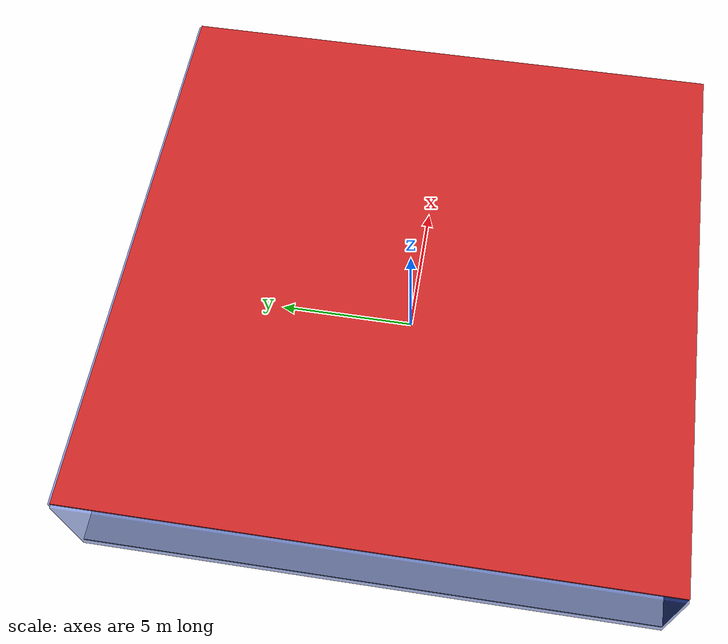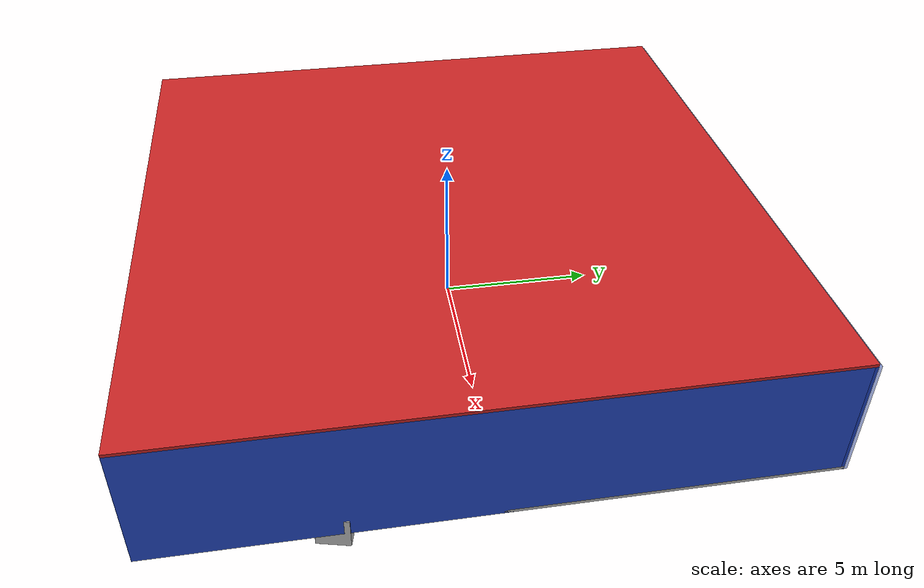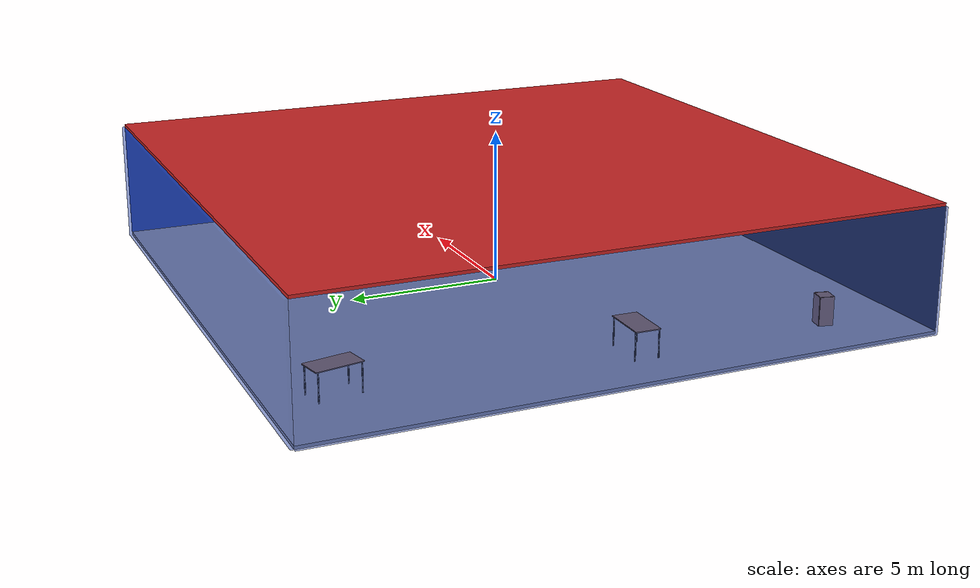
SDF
<sdf version="1.4">
 <world name="default">
  <physics type="ode">
   <max_step_size>0.001</max_step_size>
   <real_time_factor>1</real_time_factor>
   <real_time_update_rate>1000</real_time_update_rate>
   <gravity>0 0 -9.8</gravity>
  </physics>
  <scene><ambient>0.4 0.4 0.4 1</ambient><background>0.7 0.7 0.7 1</background><shadows>1</shadows></scene>
  <model name="Surrounding">
   <static>1</static>
   <link name="Ceiling">
    <collision name="Ceiling_Collision"><geometry><box><size>20 20 0.1</size></box></geometry></collision>
    <visual name="Ceiling_Visual">
     <geometry><box><size>20 20 0.1</size></box></geometry>
     <material>
      <script><uri>file://media/materials/scripts/gazebo.material</uri><name>Gazebo/Red</name></script>
     </material>
    </visual>
    <pose>0 0 4.05 0 0 0</pose>
   </link>
   <link name="Wall_South">
    <collision name="Wall_South_Collision">
     <geometry><box><size>20 0 4</size></box></geometry>
     <pose>0 0 2 0 -0 0</pose>
    </collision>
    <visual name="Wall_South_Visual">
     <pose>0 0 2 0 -0 0</pose>
     <geometry><box><size>20 0 4</size></box></geometry>
     <material>
      <script><uri>file://media/materials/scripts/gazebo.material</uri><name>Gazebo/Black</name></script>
     </material>
    </visual>
    <velocity_decay><linear>0</linear><angular>0</angular></velocity_decay>
    <pose>0 -10 0 0 -0 0</pose>
   </link>
   <link name="Wall_East">
    <collision name="Wall_21_Collision">
     <geometry><box><size>20 0 4</size></box></geometry>
     <pose>0 0 2 0 -0 0</pose>
    </collision>
    <visual name="Wall_21_Visual">
     <pose>0 0 2 0 -0 0</pose>
     <geometry><box><size>20 0 4</size></box></geometry>
     <material>
      <script><uri>file://media/materials/scripts/gazebo.material</uri><name>Gazebo/BlueGlow</name></script>
     </material>
    </visual>
    <velocity_decay><linear>0</linear><angular>0</angular></velocity_decay>
    <pose>10 0 0 0 -0 1.5708</pose>
   </link>
   <link name="Wall_North">
    <collision name="Wall_22_Collision">
     <geometry><box><size>20 0.2 4</size></box></geometry>
     <pose>0 0 2 0 -0 0</pose>
    </collision>
    <visual name="Wall_22_Visual">
     <pose>0 0 2 0 -0 0</pose>
     <geometry><box><size>20 0.2 4</size></box></geometry>
     <material>
      <script><uri>file://media/materials/scripts/gazebo.material</uri><name>Gazebo/BlueTransparent</name></script>
     </material>
    </visual>
    <velocity_decay><linear>0</linear><angular>0</angular></velocity_decay>
    <pose>0 10 0 0 -0 0</pose>
   </link>
   <link name="Wall_West">
    <collision name="Wall_23_Collision">
     <geometry><box><size>20 0.2 4</size></box></geometry>
     <pose>0 0 2 0 -0 0</pose>
    </collision>
    <visual name="Wall_23_Visual">
     <pose>0 0 2 0 -0 0</pose>
     <geometry><box><size>20 0.2 4</size></box></geometry>
     <material>
      <script><uri>file://media/materials/scripts/gazebo.material</uri><name>Gazebo/BlueTransparent</name></script>
     </material>
    </visual>
    <velocity_decay><linear>0</linear><angular>0</angular></velocity_decay>
    <pose>-10 0 0 0 0 -1.5708</pose>
   </link>
   <link name="Ground_link">
    <collision name="collision">
     <pose>0 0 .05 0 -0 0</pose>
     <geometry><box><size>20 20 0.1</size></box></geometry>
    </collision>
    <visual name="visual">
     <pose>0 0 .05 0 -0 0</pose>
     <geometry><box><size>20 20 0.1</size></box></geometry>
     <material>
      <script><uri>file://media/materials/scripts/gazebo.material</uri><name>Gazebo/PioneerBody</name></script>
     </material>
    </visual>
   </link>
   <static>1</static>
  </model>
  <spherical_coordinates>
   <surface_model>EARTH_WGS84</surface_model>
   <latitude_deg>0</latitude_deg>
   <longitude_deg>0</longitude_deg>
   <elevation>0</elevation>
   <heading_deg>0</heading_deg>
  </spherical_coordinates>
  <light name="lightball_0" type="diffuse">
   <diffuse>0.8 0.8 0.8 1</diffuse>
   <specular>0.2 0.2 0.2 1</specular>
   <attenuation>
    <range>100</range>
    <constant>0.7</constant>
    <linear>0.01</linear>
    <quadratic>0.001</quadratic>
   </attenuation>
   <direction>-0.5 0.1 -0.9</direction>
   <pose>-1.24874231868 8.92690327529 1.74574839889 0 0 0</pose>
  </light>
  <light name="lightball_1" type="diffuse">
   <diffuse>0.8 0.8 0.8 1</diffuse>
   <specular>0.2 0.2 0.2 1</specular>
   <attenuation>
    <range>100</range>
    <constant>0.7</constant>
    <linear>0.01</linear>
    <quadratic>0.001</quadratic>
   </attenuation>
   <direction>-0.5 0.1 -0.9</direction>
   <pose>4.74567839661 3.65306891879 2.22124369385 0 0 0</pose>
  </light>
  <light name="lightball_2" type="diffuse">
   <diffuse>0.8 0.8 0.8 1</diffuse>
   <specular>0.2 0.2 0.2 1</specular>
   <attenuation>
    <range>100</range>
    <constant>0.7</constant>
    <linear>0.01</linear>
    <quadratic>0.001</quadratic>
   </attenuation>
   <direction>-0.5 0.1 -0.9</direction>
   <pose>-3.64767809816 -6.75948334163 1.18183691166 0 0 0</pose>
  </light>
  <light name="lightball_3" type="diffuse">
   <diffuse>0.8 0.8 0.8 1</diffuse>
   <specular>0.2 0.2 0.2 1</specular>
   <attenuation>
    <range>100</range>
    <constant>0.7</constant>
    <linear>0.01</linear>
    <quadratic>0.001</quadratic>
   </attenuation>
   <direction>-0.5 0.1 -0.9</direction>
   <pose>6.69804421286 -9.60670336917 3.43461719073 0 0 0</pose>
  </light>
  <light name="lightball_4" type="diffuse">
   <diffuse>0.8 0.8 0.8 1</diffuse>
   <specular>0.2 0.2 0.2 1</specular>
   <attenuation>
    <range>100</range>
    <constant>0.7</constant>
    <linear>0.01</linear>
    <quadratic>0.001</quadratic>
   </attenuation>
   <direction>-0.5 0.1 -0.9</direction>
   <pose>-7.13888713508 7.56735685461 1.98488906956 0 0 0</pose>
  </light>
  <include><uri>model://cabinet</uri><pose>-8.0629690977 -7.29893091317 0 0 0 1.35367236225</pose></include>
  <include><uri>model://table</uri><pose>-7.82188000429 -0.948291986232 0 0 0 3.11742679246</pose></include>
  <include><uri>model://table</uri><pose>-7.21324546071 8.02048294452 0 0 0 1.76822963812</pose></include>
  <include>
   <uri>model://textured_shapes</uri>
   <pose>4.50422264545 -5.20226044671 0 0 0 1.92179725133</pose>
  </include>
  <include>
   <uri>model://robocup_3Dsim_goal</uri>
   <pose>4.06401476253 -1.09067397265 0 0 0 2.58673036532</pose>
  </include>
  <include>
   <uri>model://textured_shapes</uri>
   <pose>4.35646780918 2.12696893625 0 0 0 0.906422919468</pose>
  </include>
  <include>
   <uri>model://textured_shapes</uri>
   <pose>7.97795199322 -4.24825182792 0 0 0 1.33099422309</pose>
  </include>
  <include><uri>model://table</uri><pose>7.17159844247 1.35114086605 0 0 0 1.13314259583</pose></include>
 </world>
</sdf>

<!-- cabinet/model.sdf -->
<sdf version="1.5">
  <model name="cabinet">
    <static>true</static>
    <link name="cabinet_bottom_plate">
      <inertial>
        <pose>0 0 -1 0 0 0</pose>
        <inertia>
          <ixx>2.050000</ixx>
          <ixy>0</ixy>
          <ixz>0</ixz>
          <iyy>2.050000</iyy>
          <iyz>0</iyz>
          <izz>2.050000</izz>
        </inertia>
        <mass>25.000000</mass>
      </inertial>
      <collision name="cabinet_bottom_plate_geom">
        <pose>0 0 0.010000 0 0 0</pose>
        <geometry>
          <box>
            <size>0.450000 0.450000 0.020000</size>
          </box>
        </geometry>
      </collision>
      <visual name="cabinet_bottom_plate_geom_visual">
        <pose>0 0 0.010000 0 0 0</pose>
        <geometry>
          <box>
            <size>0.450000 0.450000 0.020000</size>
          </box>
        </geometry>
        <material>
          <script>
            <uri>model://media/materials/scripts/gazebo.material</uri>
            <name>Gazebo/Wood</name>
          </script>
        </material>
      </visual>
      <collision name="cabinet_bottom_plate_geom_cabinet_back_plate">
        <pose>0.235000 0 0.510000 0 0 0</pose>
        <geometry>
          <box>
            <size>0.020000 0.450000 1.020000</size>
          </box>
        </geometry>
      </collision>
      <visual name="cabinet_bottom_plate_geom_cabinet_back_plate_visual">
        <pose>0.235000 0 0.510000 0 0 0</pose>
        <geometry>
          <box>
            <size>0.020000 0.450000 1.020000</size>
          </box>
        </geometry>
        <material>
          <script>
            <uri>model://media/materials/scripts/gazebo.material</uri>
            <name>Gazebo/Wood</name>
          </script>
        </material>
      </visual>
      <collision name="cabinet_bottom_plate_geom_cabinet_left_plate">
        <pose>0 0.235000 0.510000 0 0 0</pose>
        <geometry>
          <box>
            <size>0.450000 0.020000 1.020000</size>
          </box>
        </geometry>
      </collision>
      <visual name="cabinet_bottom_plate_geom_cabinet_left_plate_visual">
        <pose>0 0.235000 0.510000 0 0 0</pose>
        <geometry>
          <box>
            <size>0.450000 0.020000 1.020000</size>
          </box>
        </geometry>
        <material>
          <script>
            <uri>model://media/materials/scripts/gazebo.material</uri>
            <name>Gazebo/Wood</name>
          </script>
        </material>
      </visual>
      <collision name="cabinet_bottom_plate_geom_cabinet_middle_plate">
        <pose>0 0 0.510000 0 0 0</pose>
        <geometry>
          <box>
            <size>0.450000 0.450000 0.020000</size>
          </box>
        </geometry>
      </collision>
      <visual name="cabinet_bottom_plate_geom_cabinet_middle_plate_visual">
        <pose>0 0 0.510000 0 0 0</pose>
        <geometry>
          <box>
            <size>0.450000 0.450000 0.020000</size>
          </box>
        </geometry>
        <material>
          <script>
            <uri>model://media/materials/scripts/gazebo.material</uri>
            <name>Gazebo/Wood</name>
          </script>
        </material>
      </visual>
      <collision name="cabinet_bottom_plate_geom_cabinet_right_plate">
        <pose>0 -0.235000 0.510000 0 0 0</pose>
        <geometry>
          <box>
            <size>0.450000 0.020000 1.020000</size>
          </box>
        </geometry>
      </collision>
      <visual name="cabinet_bottom_plate_geom_cabinet_right_plate_visual">
        <pose>0 -0.235000 0.510000 0 0 0</pose>
        <geometry>
          <box>
            <size>0.450000 0.020000 1.020000</size>
          </box>
        </geometry>
        <material>
          <script>
            <uri>model://media/materials/scripts/gazebo.material</uri>
            <name>Gazebo/Wood</name>
          </script>
        </material>
      </visual>
      <collision name="cabinet_bottom_plate_geom_cabinet_top_plate">
        <pose>0 0 1.010000 0 0 0</pose>
        <geometry>
          <box>
            <size>0.450000 0.450000 0.020000</size>
          </box>
        </geometry>
      </collision>
      <visual name="cabinet_bottom_plate_geom_cabinet_top_plate_visual">
        <pose>0 0 1.010000 0 0 0</pose>
        <geometry>
          <box>
            <size>0.450000 0.450000 0.020000</size>
          </box>
        </geometry>
        <material>
          <script>
            <uri>model://media/materials/scripts/gazebo.material</uri>
            <name>Gazebo/Wood</name>
          </script>
        </material>
      </visual>
    </link>
  </model>
</sdf>

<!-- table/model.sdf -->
<sdf version="1.5">
  <model name="table">
    <static>true</static>
    <link name="link">
      <collision name="surface">
        <pose>0 0 1.0 0 0 0</pose>
        <geometry>
          <box>
            <size>1.5 0.8 0.03</size>
          </box>
        </geometry>
        <surface>
          <friction>
            <ode>
              <mu>0.6</mu>
              <mu2>0.6</mu2>
            </ode>
          </friction>
        </surface>
      </collision>
      <visual name="visual1">
        <pose>0 0 1.0 0 0 0</pose>
        <geometry>
          <box>
            <size>1.5 0.8 0.03</size>
          </box>
        </geometry>
        <material>
          <script>
            <uri>model://media/materials/scripts/gazebo.material</uri>
            <name>Gazebo/Wood</name>
          </script>
        </material>
      </visual>
      <collision name="front_left_leg">
        <pose>0.68 0.38 0.5 0 0 0</pose>
        <geometry>
          <cylinder>
            <radius>0.02</radius>
            <length>1.0</length>
          </cylinder>
        </geometry>
      </collision>
      <visual name="front_left_leg">
        <pose>0.68 0.38 0.5 0 0 0</pose>
        <geometry>
          <cylinder>
            <radius>0.02</radius>
            <length>1.0</length>
          </cylinder>
        </geometry>
        <material>
          <script>
            <uri>model://media/materials/scripts/gazebo.material</uri>
            <name>Gazebo/Grey</name>
          </script>
        </material>
      </visual>
      <collision name="front_right_leg">
        <pose>0.68 -0.38 0.5 0 0 0</pose>
        <geometry>
          <cylinder>
            <radius>0.02</radius>
            <length>1.0</length>
          </cylinder>
        </geometry>
      </collision>
      <visual name="front_right_leg">
        <pose>0.68 -0.38 0.5 0 0 0</pose>
        <geometry>
          <cylinder>
            <radius>0.02</radius>
            <length>1.0</length>
          </cylinder>
        </geometry>
        <material>
          <script>
            <uri>model://media/materials/scripts/gazebo.material</uri>
            <name>Gazebo/Grey</name>
          </script>
        </material>
      </visual>
      <collision name="back_right_leg">
        <pose>-0.68 -0.38 0.5 0 0 0</pose>
        <geometry>
          <cylinder>
            <radius>0.02</radius>
            <length>1.0</length>
          </cylinder>
        </geometry>
      </collision>
      <visual name="back_right_leg">
        <pose>-0.68 -0.38 0.5 0 0 0</pose>
        <geometry>
          <cylinder>
            <radius>0.02</radius>
            <length>1.0</length>
          </cylinder>
        </geometry>
        <material>
          <script>
            <uri>model://media/materials/scripts/gazebo.material</uri>
            <name>Gazebo/Grey</name>
          </script>
        </material>
      </visual>
      <collision name="back_left_leg">
        <pose>-0.68 0.38 0.5 0 0 0</pose>
        <geometry>
          <cylinder>
            <radius>0.02</radius>
            <length>1.0</length>
          </cylinder>
        </geometry>
      </collision>
      <visual name="back_left_leg">
        <pose>-0.68 0.38 0.5 0 0 0</pose>
        <geometry>
          <cylinder>
            <radius>0.02</radius>
            <length>1.0</length>
          </cylinder>
        </geometry>
        <material>
          <script>
            <uri>model://media/materials/scripts/gazebo.material</uri>
            <name>Gazebo/Grey</name>
          </script>
        </material>
      </visual>
    </link>
  </model>
</sdf>

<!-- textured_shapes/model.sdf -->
<sdf version="1.6">
  <model name="textured_shapes">
    <pose>0 0 0.5 0 0 0</pose>
    <link name="box">
      <pose>0 -1.5 0 0 0 0</pose>
      <collision name="collision">
        <geometry>
          <box>
            <size>1 1 1</size>
          </box>
        </geometry>
      </collision>
      <visual name="visual">
        <geometry>
          <box>
            <size>1 1 1</size>
          </box>
        </geometry>
        <material>
          <script>
            <uri>model://../model_source/models/textured_shapes/materials/scripts</uri>
            <uri>model://../model_source/models/textured_shapes/materials/textures</uri>
            <name>TexturedShape/Squares</name>
          </script>
        </material>
      </visual>
    </link>
    <link name="sphere">
      <collision name="collision">
        <geometry>
          <sphere>
            <radius>0.5</radius>
          </sphere>
        </geometry>
      </collision>
      <visual name="visual">
        <geometry>
          <sphere>
            <radius>0.5</radius>
          </sphere>
        </geometry>
        <material>
          <script>
            <uri>model://../model_source/models/textured_shapes/materials/scripts</uri>
            <uri>model://../model_source/models/textured_shapes/materials/textures</uri>
            <name>TexturedShape/Squares</name>
          </script>
        </material>
      </visual>
    </link>
    <link name="cylinder">
      <pose>0 1.5 0 0 0 0</pose>
      <collision name="collision">
        <geometry>
          <cylinder>
            <radius>0.5</radius>
            <length>1</length>
          </cylinder>
        </geometry>
      </collision>
      <visual name="visual">
        <geometry>
          <cylinder>
            <radius>0.5</radius>
            <length>1</length>
          </cylinder>
        </geometry>
        <material>
          <script>
            <uri>model://../model_source/models/textured_shapes/materials/scripts</uri>
            <uri>model://../model_source/models/textured_shapes/materials/textures</uri>
            <name>TexturedShape/Squares</name>
          </script>
        </material>
      </visual>
    </link>
  </model>
</sdf>

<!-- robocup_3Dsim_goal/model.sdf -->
<sdf version="1.5">
  <model name="robocup_3d_goal">
    <static>true</static>
    <link name="left_post">
      <pose>0 1.05 0.45 0 0 0</pose>
      <collision name="collision">
        <geometry>
          <cylinder>
            <radius>0.05</radius>
            <length>0.9</length>
          </cylinder>
        </geometry>
      </collision>
      <visual name="visual">
        <geometry>
          <cylinder>
            <radius>0.05</radius>
            <length>0.9</length>
          </cylinder>
        </geometry>
        <material>
          <script>
            <uri>file://media/materials/scripts/gazebo.material</uri>
            <name>Gazebo/ZincYellow</name>
          </script>
        </material>
      </visual>
    </link>
    <link name="left_support_horiz_lower">
      <pose>0.30 1.05 0.01 0 0 0</pose>
      <collision name="collision">
        <geometry>
          <box>
            <size>0.50 0.02 0.02</size>
          </box>
        </geometry>
      </collision>
      <visual name="visual">
        <geometry>
          <box>
            <size>0.50 0.02 0.02</size>
          </box>
        </geometry>
        <material>
          <script>
            <uri>file://media/materials/scripts/gazebo.material</uri>
            <name>Gazebo/White</name>
          </script>
        </material>
      </visual>
    </link>
    <link name="left_support_horiz_upper">
      <pose>0.30 1.05 0.79 0 0 0</pose>
      <collision name="collision">
        <geometry>
          <box>
            <size>0.50 0.02 0.02</size>
          </box>
        </geometry>
      </collision>
      <visual name="visual">
        <geometry>
          <box>
            <size>0.50 0.02 0.02</size>
          </box>
        </geometry>
        <material>
          <script>
            <uri>file://media/materials/scripts/gazebo.material</uri>
            <name>Gazebo/White</name>
          </script>
        </material>
      </visual>
    </link>
    <link name="left_support_vertical">
      <pose>0.56 1.05 0.4 0 1.5708 0</pose>
      <collision name="collision">
        <geometry>
          <box>
            <size>0.80 0.02 0.02</size>
          </box>
        </geometry>
      </collision>
      <visual name="visual">
        <geometry>
          <box>
            <size>0.80 0.02 0.02</size>
          </box>
        </geometry>
        <material>
          <script>
            <uri>file://media/materials/scripts/gazebo.material</uri>
            <name>Gazebo/White</name>
          </script>
        </material>
      </visual>
    </link>
    <link name="right_support_horiz_lower">
      <pose>0.30 -1.05 0.01 0 0 0</pose>
      <collision name="collision">
        <geometry>
          <box>
            <size>0.50 0.02 0.02</size>
          </box>
        </geometry>
      </collision>
      <visual name="visual">
        <geometry>
          <box>
            <size>0.50 0.02 0.02</size>
          </box>
        </geometry>
        <material>
          <script>
            <uri>file://media/materials/scripts/gazebo.material</uri>
            <name>Gazebo/White</name>
          </script>
        </material>
      </visual>
    </link>
    <link name="right_support_horiz_upper">
      <pose>0.30 -1.05 0.79 0 0 0</pose>
      <collision name="collision">
        <geometry>
          <box>
            <size>0.50 0.02 0.02</size>
          </box>
        </geometry>
      </collision>
      <visual name="visual">
        <geometry>
          <box>
            <size>0.50 0.02 0.02</size>
          </box>
        </geometry>
        <material>
          <script>
            <uri>file://media/materials/scripts/gazebo.material</uri>
            <name>Gazebo/White</name>
          </script>
        </material>
      </visual>
    </link>
    <link name="right_support_vertical">
      <pose>0.56 -1.05 0.4 0 1.5708 0</pose>
      <collision name="collision">
        <geometry>
          <box>
            <size>0.80 0.02 0.02</size>
          </box>
        </geometry>
      </collision>
      <visual name="visual">
        <geometry>
          <box>
            <size>0.80 0.02 0.02</size>
          </box>
        </geometry>
        <material>
          <script>
            <uri>file://media/materials/scripts/gazebo.material</uri>
            <name>Gazebo/White</name>
          </script>
        </material>
      </visual>
    </link>
    <link name="center_support_horiz_lower">
      <pose>0.56 0 0.01 0 1.5708 0</pose>
      <collision name="collision">
        <geometry>
          <box>
            <size>0.02 2.08 0.02</size>
          </box>
        </geometry>
      </collision>
      <visual name="visual">
        <geometry>
          <box>
            <size>0.02 2.08 0.02</size>
          </box>
        </geometry>
        <material>
          <script>
            <uri>file://media/materials/scripts/gazebo.material</uri>
            <name>Gazebo/White</name>
          </script>
        </material>
      </visual>
    </link>
    <link name="center_support_horiz_upper">
      <pose>0.56 0 0.79 0 1.5708 0</pose>
      <collision name="collision">
        <geometry>
          <box>
            <size>0.02 2.08 0.02</size>
          </box>
        </geometry>
      </collision>
      <visual name="visual">
        <geometry>
          <box>
            <size>0.02 2.08 0.02</size>
          </box>
        </geometry>
        <material>
          <script>
            <uri>file://media/materials/scripts/gazebo.material</uri>
            <name>Gazebo/White</name>
          </script>
        </material>
      </visual>
    </link>
    <link name="right_post">
      <pose>0 -1.05 0.45 0 0 0</pose>
      <collision name="collision">
        <geometry>
          <cylinder>
            <radius>0.05</radius>
            <length>0.9</length>
          </cylinder>
        </geometry>
      </collision>
      <visual name="visual">
        <geometry>
          <cylinder>
            <radius>0.05</radius>
            <length>0.9</length>
          </cylinder>
        </geometry>
        <material>
          <script>
            <uri>file://media/materials/scripts/gazebo.material</uri>
            <name>Gazebo/ZincYellow</name>
          </script>
        </material>
      </visual>
    </link>
    <link name="crossbar">
      <pose>0 0 0.85 1.57 1.57 0</pose>
      <collision name="collision">
        <geometry>
          <cylinder>
            <radius>0.05</radius>
            <length>2.0</length>
          </cylinder>
        </geometry>
      </collision>
      <visual name="visual">
        <geometry>
          <cylinder>
            <radius>0.05</radius>
            <length>2.0</length>
          </cylinder>
        </geometry>
        <material>
          <script>
            <uri>file://media/materials/scripts/gazebo.material</uri>
            <name>Gazebo/ZincYellow</name>
          </script>
        </material>
      </visual>
    </link>
    <link name="center_net">
      <pose>0.56 0 0.40 0 0 0</pose>
      <collision name="collision">
        <geometry>
          <box>
            <size>0.01 2.1 0.80</size>
          </box>
        </geometry>
      </collision>
      <visual name="visual">
        <geometry>
          <box>
            <size>0.01 2.1 0.80</size>
          </box>
        </geometry>
        <material>
          <script>
            <uri>model://../model_source/models/robocup09_spl_field/materials/scripts/</uri>
            <uri>model://../model_source/models/robocup09_spl_field/materials/textures/</uri>
            <name>RoboCup/Net</name>
          </script>
        </material>
      </visual>
    </link>
    <link name="left_net">
      <pose>0.30 1.05 0.40 0 0 0</pose>
      <collision name="collision">
        <geometry>
          <box>
            <size>0.50 0.01 0.76</size>
          </box>
        </geometry>
      </collision>
      <visual name="visual">
        <geometry>
          <box>
            <size>0.50 0.01 0.76</size>
          </box>
        </geometry>
        <material>
          <script>
            <uri>model://../model_source/models/robocup09_spl_field/materials/scripts/</uri>
            <uri>model://../model_source/models/robocup09_spl_field/materials/textures/</uri>
            <name>RoboCup/Net</name>
          </script>
        </material>
      </visual>
    </link>
    <link name="right_net">
      <pose>0.30 -1.05 0.40 0 0 0</pose>
      <collision name="collision">
        <geometry>
          <box>
            <size>0.50 0.01 0.76</size>
          </box>
        </geometry>
      </collision>
      <visual name="visual">
        <geometry>
          <box>
            <size>0.50 0.01 0.76</size>
          </box>
        </geometry>
        <material>
          <script>
            <uri>model://../model_source/models/robocup09_spl_field/materials/scripts/</uri>
            <uri>model://../model_source/models/robocup09_spl_field/materials/textures/</uri>
            <name>RoboCup/Net</name>
          </script>
        </material>
      </visual>
    </link>
  </model>
</sdf>
